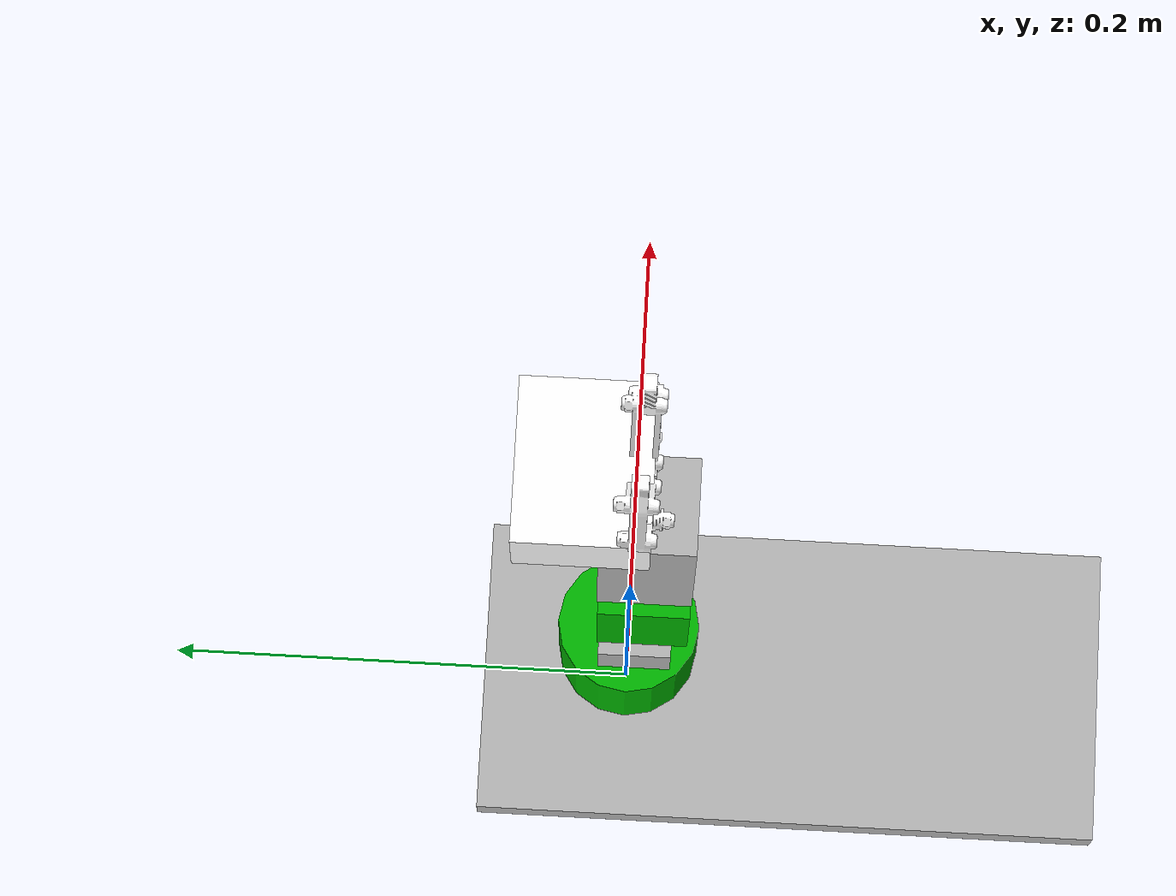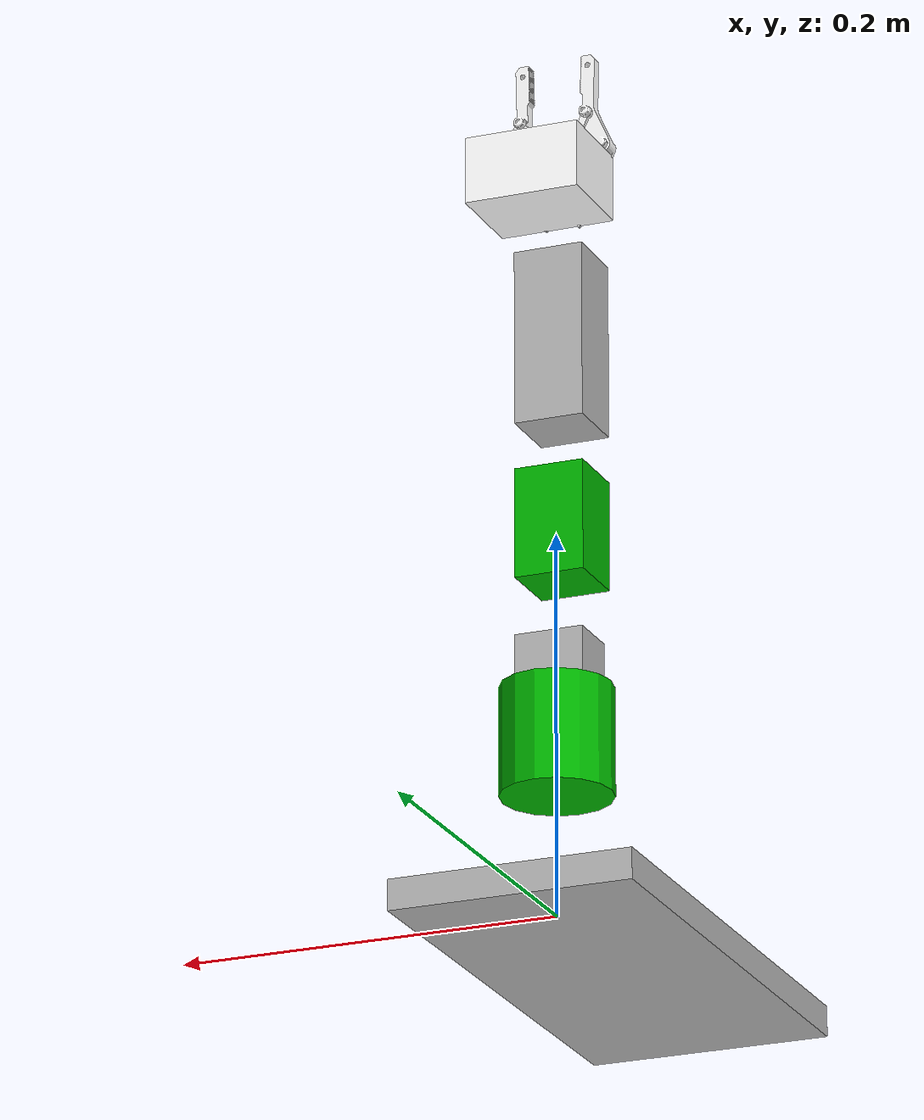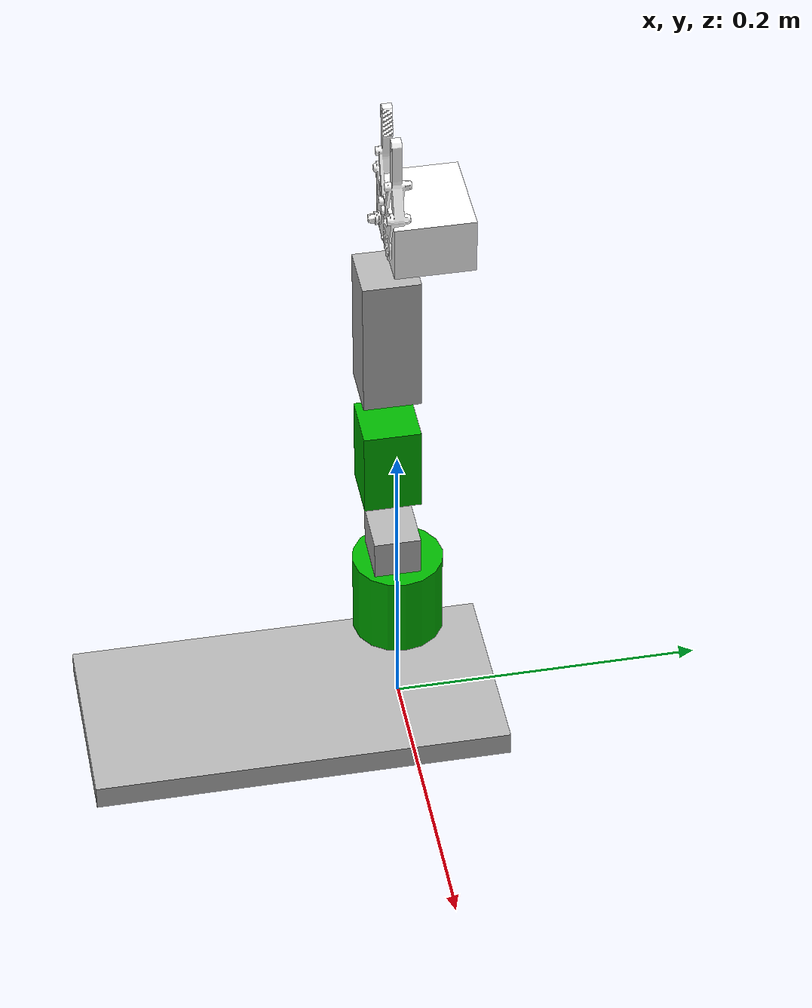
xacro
<?xml version="1.0" encoding="utf-8"?>
<robot name="dofbot" xmlns:xacro="http://www.ros.org/wiki/xacro">

  <xacro:macro name="dofbot_inertial" params="mass origin_xyz origin_rpy ixx iyy izz ixy ixz iyz">
    <inertial>
      <mass value="${mass}" />
      <origin xyz="${origin_xyz}" rpy="${origin_rpy}" />
      <inertia ixx="${ixx}" ixy="${ixy}" ixz="${ixz}"
               iyy="${iyy}" iyz="${iyz}" izz="${izz}" />
    </inertial>
  </xacro:macro>

  <xacro:macro name="dofbot_visual" params="mesh_file origin_xyz origin_rpy material_name">
    <visual>
      <origin xyz="${origin_xyz}" rpy="${origin_rpy}" />
      <geometry>
        <mesh filename="package://dofbot_description/meshes/visual/${mesh_file}" />
      </geometry>
      <material name="${material_name}" />
    </visual>
  </xacro:macro>

  <material name="grey_material">
    <color rgba="0.7 0.7 0.7 1" />
  </material>
  <material name="green_material">
    <color rgba="0 0.7 0 1" />
  </material>
  <material name="white_material">
    <color rgba="1 1 1 1" />
  </material>

  <link name="base_link">
    <xacro:dofbot_inertial mass="0.369776"
      origin_xyz="0.000065 -0.048265 0.021267" origin_rpy="0 0 0"
      ixx="0.00206195" ixy="-0.00000069" ixz="-0.00000073"
      iyy="0.00062736" iyz="-0.00032039" izz="0.00210250" />
    <xacro:dofbot_visual mesh_file="base_link.stl" origin_xyz="0 0 0" origin_rpy="0 0 0" material_name="grey_material" />
    <collision>
      <origin xyz="0 0 0" rpy="0 0 0" />
      <geometry>
        <mesh filename="package://dofbot_description/meshes/collision/base_link_col_1.stl" />
      </geometry>
    </collision>
    <collision>
      <origin xyz="0 0 0" rpy="0 0 0" />
      <geometry>
        <mesh filename="package://dofbot_description/meshes/collision/base_link_col_2.stl" />
      </geometry>
    </collision>
    <collision>
      <origin xyz="0 0 0" rpy="0 0 0" />
      <geometry>
        <mesh filename="package://dofbot_description/meshes/collision/base_link_col_3.stl" />
      </geometry>
    </collision>
  </link>

  <joint name="base_rotation_joint" type="revolute">
    <origin xyz="0 0 0.064" rpy="0 0 0" />
    <parent link="base_link" />
    <child link="base_rotation_link" />
    <axis xyz="0 0 1" />
    <limit lower="-1.5708" upper="1.5708" effort="1.5" velocity="3.14" />
    <dynamics damping="0.1" friction="0.05" />
  </joint>

  <link name="base_rotation_link">
    <xacro:dofbot_inertial mass="0.052312"
      origin_xyz="0.000003 0.000000 0.018653" origin_rpy="0 0 0"
      ixx="0.00001691" ixy="0.00000000" ixz="-0.00000010"
      iyy="0.00002055" iyz="0.00000000" izz="0.00001885" />
    <xacro:dofbot_visual mesh_file="link1.stl" origin_xyz="0 0 0" origin_rpy="0 0 0" material_name="green_material" />
    <collision>
      <origin xyz="0 0 0" rpy="0 0 0" />
      <geometry>
        <mesh filename="package://dofbot_description/meshes/collision/link1_col.stl" />
      </geometry>
    </collision>
  </link>

  <joint name="upper_arm_joint" type="revolute">
    <origin xyz="0 0 0.0435" rpy="0 1.5708 0" />
    <parent link="base_rotation_link" />
    <child link="upper_arm_link" />
    <axis xyz="0 0 1" />
    <limit lower="-1.5708" upper="1.5708" effort="1.5" velocity="3.14" />
    <dynamics damping="0.1" friction="0.05" />
  </joint>

  <link name="upper_arm_link">
    <xacro:dofbot_inertial mass="0.085210"
      origin_xyz="-0.024890 -0.002259 -0.000080" origin_rpy="0 0 0"
      ixx="0.00001575" ixy="0.00000237" ixz="0.00000041"
      iyy="0.00007182" iyz="-0.00000002" izz="0.00006650" />
    <xacro:dofbot_visual mesh_file="link2.stl" origin_xyz="0 0 0" origin_rpy="0 0 0" material_name="grey_material" />
    <collision>
      <origin xyz="0 0 0" rpy="0 0 0" />
      <geometry>
        <mesh filename="package://dofbot_description/meshes/collision/link2_col_1.stl" />
      </geometry>
    </collision>
    <collision>
      <origin xyz="0 0 0" rpy="0 0 0" />
      <geometry>
        <mesh filename="package://dofbot_description/meshes/collision/link2_col_2.stl" />
      </geometry>
    </collision>
  </link>

  <joint name="forearm_joint" type="revolute">
    <origin xyz="-0.08285 0 0" rpy="0 0 0" />
    <parent link="upper_arm_link" />
    <child link="forearm_link" />
    <axis xyz="0 0 1" />
    <limit lower="-1.5708" upper="1.5708" effort="1.5" velocity="3.14" />
    <dynamics damping="0.1" friction="0.05" />
  </joint>

  <link name="forearm_link">
    <xacro:dofbot_inertial mass="0.085210"
      origin_xyz="-0.024890 -0.002259 -0.000650" origin_rpy="0 0 0"
      ixx="0.00001575" ixy="0.00000237" ixz="0.00000039"
      iyy="0.00007182" iyz="-0.00000003" izz="0.00006650" />
    <xacro:dofbot_visual mesh_file="link3.stl" origin_xyz="0 0 0" origin_rpy="0 0 0" material_name="green_material" />
    <collision>
      <origin xyz="0 0 0" rpy="0 0 0" />
      <geometry>
        <mesh filename="package://dofbot_description/meshes/collision/link3_col_1.stl" />
      </geometry>
    </collision>
    <collision>
      <origin xyz="0 0 0" rpy="0 0 0" />
      <geometry>
        <mesh filename="package://dofbot_description/meshes/collision/link3_col_2.stl" />
      </geometry>
    </collision>
  </link>

  <joint name="wrist_pitch_joint" type="revolute">
    <origin xyz="-0.08285 0 0" rpy="0 0 0" />
    <parent link="forearm_link" />
    <child link="wrist_link" />
    <axis xyz="0 0 1" />
    <limit lower="-1.5708" upper="1.5708" effort="1.5" velocity="3.14" />
    <dynamics damping="0.1" friction="0.05" />
  </joint>

  <link name="wrist_link">
    <xacro:dofbot_inertial mass="0.160515"
      origin_xyz="-0.038494 -0.004349 -0.000785" origin_rpy="0 0 0"
      ixx="0.00007571" ixy="0.00000562" ixz="-0.00000005"
      iyy="0.00010711" iyz="0.00000063" izz="0.00016261" />
    <xacro:dofbot_visual mesh_file="link4.stl" origin_xyz="0 0 0" origin_rpy="0 0 0" material_name="grey_material" />
    <collision>
      <origin xyz="0 0 0" rpy="0 0 0" />
      <geometry>
        <mesh filename="package://dofbot_description/meshes/collision/link4_col_1.stl" />
      </geometry>
    </collision>
    <collision>
      <origin xyz="0 0 0" rpy="0 0 0" />
      <geometry>
        <mesh filename="package://dofbot_description/meshes/collision/link4_col_2.stl" />
      </geometry>
    </collision>
    <collision>
      <origin xyz="0 0 0" rpy="0 0 0" />
      <geometry>
        <mesh filename="package://dofbot_description/meshes/collision/link4_col_3.stl" />
      </geometry>
    </collision>
  </link>

  <joint name="wrist_roll_joint" type="revolute">
    <origin xyz="-0.18385 -0.00215 -0.000605" rpy="0 -1.5708 0" />
    <parent link="wrist_link" />
    <child link="wrist_roll_link" />
    <axis xyz="0 0 1" />
    <limit lower="-1.5708" upper="3.1416" effort="1.5" velocity="3.14" />
    <dynamics damping="0.1" friction="0.05" />
  </joint>

  <link name="wrist_roll_link">
    <xacro:dofbot_inertial mass="0.091378"
      origin_xyz="0.002622 0.017797 0.030802" origin_rpy="0 0 0"
      ixx="0.00002550" ixy="-0.00000057" ixz="-0.00000065"
      iyy="0.00002286" iyz="-0.00000404" izz="0.00002965" />
    <xacro:dofbot_visual mesh_file="link5_flange.stl" origin_xyz="0 0 -0.11" origin_rpy="0 0 0" material_name="white_material" />
    <collision>
      <origin xyz="0 0 -0.11" rpy="0 0 0" />
      <geometry>
        <mesh filename="package://dofbot_description/meshes/collision/flange_col_1.stl" />
      </geometry>
    </collision>
    <collision>
      <origin xyz="0 0 -0.11" rpy="0 0 0" />
      <geometry>
        <mesh filename="package://dofbot_description/meshes/collision/flange_col_2.stl" />
      </geometry>
    </collision>
  </link>

  <joint name="gripper_left_joint" type="prismatic">
    <origin xyz="0 0 0" rpy="0 0 0" />
    <parent link="wrist_roll_link" />
    <child link="gripper_left_link" />
    <axis xyz="1 0 0" />
    <limit lower="-0.03" upper="0.03" effort="5.0" velocity="0.5" />
    <dynamics damping="0.1" friction="0.05" />
  </joint>

  <link name="gripper_left_link">
    <xacro:dofbot_inertial mass="0.006329"
      origin_xyz="0.016595 -0.001857 0.062980" origin_rpy="0 0 0"
      ixx="0.00000356" ixy="-0.00000001" ixz="-0.00000037"
      iyy="0.00000378" iyz="-0.00000016" izz="0.00000034" />
    <xacro:dofbot_visual mesh_file="left_finger.stl" origin_xyz="0 0 -0.11" origin_rpy="0 0 0" material_name="white_material" />
    <collision>
      <origin xyz="0 0 -0.11" rpy="0 0 0" />
      <geometry>
        <mesh filename="package://dofbot_description/meshes/collision/left_finger_col_1.stl" />
      </geometry>
    </collision>
    <collision>
      <origin xyz="0 0 -0.11" rpy="0 0 0" />
      <geometry>
        <mesh filename="package://dofbot_description/meshes/collision/left_finger_col_2.stl" />
      </geometry>
    </collision>
    <collision>
      <origin xyz="0 0 -0.11" rpy="0 0 0" />
      <geometry>
        <mesh filename="package://dofbot_description/meshes/collision/left_finger_col_3.stl" />
      </geometry>
    </collision>
  </link>

  <joint name="gripper_right_joint" type="prismatic">
    <origin xyz="0 0 0" rpy="0 0 0" />
    <parent link="wrist_roll_link" />
    <child link="gripper_right_link" />
    <axis xyz="1 0 0" />
    <limit lower="-0.03" upper="0.03" effort="5.0" velocity="0.5" />
    <dynamics damping="0.1" friction="0.05" />
    <mimic joint="gripper_left_joint" multiplier="-1.0" offset="0.0" />
  </joint>

  <link name="gripper_right_link">
    <xacro:dofbot_inertial mass="0.005998"
      origin_xyz="-0.016626 -0.001230 0.064650" origin_rpy="0 0 0"
      ixx="0.00000330" ixy="0.00000002" ixz="0.00000032"
      iyy="0.00000348" iyz="-0.00000022" izz="0.00000032" />
    <xacro:dofbot_visual mesh_file="right_finger.stl" origin_xyz="0 0 -0.11" origin_rpy="0 0 0" material_name="white_material" />
    <collision>
      <origin xyz="0 0 -0.11" rpy="0 0 0" />
      <geometry>
        <mesh filename="package://dofbot_description/meshes/collision/right_finger_col_1.stl" />
      </geometry>
    </collision>
    <collision>
      <origin xyz="0 0 -0.11" rpy="0 0 0" />
      <geometry>
        <mesh filename="package://dofbot_description/meshes/collision/right_finger_col_2.stl" />
      </geometry>
    </collision>
    <collision>
      <origin xyz="0 0 -0.11" rpy="0 0 0" />
      <geometry>
        <mesh filename="package://dofbot_description/meshes/collision/right_finger_col_3.stl" />
      </geometry>
    </collision>
  </link>

  <!-- gripper_tcp: 末端工具中心点 (TCP)，固定偏移，供 MoveIt IK 计算 -->
  <joint name="gripper_tcp_joint" type="fixed">
    <origin xyz="0 0 0.0925" rpy="0 0 0"/>
    <parent link="wrist_roll_link"/>
    <child link="gripper_tcp"/>
  </joint>

  <link name="gripper_tcp">
    <inertial>
      <mass value="1e-9"/>
      <origin xyz="0 0 0"/>
      <inertia ixx="1e-15" ixy="0" ixz="0" iyy="1e-15" iyz="0" izz="1e-15"/>
    </inertial>
  </link>

  <!-- eye-in-hand camera, 安装位置与 MJCF 一致 (wrist_roll_link 下方) -->
  <!-- 几何体已嵌入 wrist_roll_link 的 STL，此 link 仅用于 TF + 图像话题关联 -->
  <joint name="camera_joint" type="fixed">
    <origin xyz="0 0.05 -0.05" rpy="0 0 0"/>
    <parent link="wrist_roll_link"/>
    <child link="camera_link"/>
  </joint>

  <link name="camera_link">
    <inertial>
      <mass value="0.03"/>
      <origin xyz="0 0 0"/>
      <inertia ixx="1e-6" ixy="0" ixz="0" iyy="1e-6" iyz="0" izz="1e-6"/>
    </inertial>
  </link>

  <!-- ==================== Transmissions ==================== -->

  <transmission name="trans_base_rotation">
    <type>transmission_interface/SimpleTransmission</type>
    <joint name="base_rotation_joint">
      <hardwareInterface>hardware_interface/PositionJointInterface</hardwareInterface>
    </joint>
    <actuator name="motor_base_rotation">
      <hardwareInterface>hardware_interface/PositionJointInterface</hardwareInterface>
      <mechanicalReduction>1</mechanicalReduction>
    </actuator>
  </transmission>

  <transmission name="trans_upper_arm">
    <type>transmission_interface/SimpleTransmission</type>
    <joint name="upper_arm_joint">
      <hardwareInterface>hardware_interface/PositionJointInterface</hardwareInterface>
    </joint>
    <actuator name="motor_upper_arm">
      <hardwareInterface>hardware_interface/PositionJointInterface</hardwareInterface>
      <mechanicalReduction>1</mechanicalReduction>
    </actuator>
  </transmission>

  <transmission name="trans_forearm">
    <type>transmission_interface/SimpleTransmission</type>
    <joint name="forearm_joint">
      <hardwareInterface>hardware_interface/PositionJointInterface</hardwareInterface>
    </joint>
    <actuator name="motor_forearm">
      <hardwareInterface>hardware_interface/PositionJointInterface</hardwareInterface>
      <mechanicalReduction>1</mechanicalReduction>
    </actuator>
  </transmission>

  <transmission name="trans_wrist_pitch">
    <type>transmission_interface/SimpleTransmission</type>
    <joint name="wrist_pitch_joint">
      <hardwareInterface>hardware_interface/PositionJointInterface</hardwareInterface>
    </joint>
    <actuator name="motor_wrist_pitch">
      <hardwareInterface>hardware_interface/PositionJointInterface</hardwareInterface>
      <mechanicalReduction>1</mechanicalReduction>
    </actuator>
  </transmission>

  <transmission name="trans_wrist_roll">
    <type>transmission_interface/SimpleTransmission</type>
    <joint name="wrist_roll_joint">
      <hardwareInterface>hardware_interface/PositionJointInterface</hardwareInterface>
    </joint>
    <actuator name="motor_wrist_roll">
      <hardwareInterface>hardware_interface/PositionJointInterface</hardwareInterface>
      <mechanicalReduction>1</mechanicalReduction>
    </actuator>
  </transmission>

  <transmission name="trans_gripper_left">
    <type>transmission_interface/SimpleTransmission</type>
    <joint name="gripper_left_joint">
      <hardwareInterface>hardware_interface/PositionJointInterface</hardwareInterface>
    </joint>
    <actuator name="motor_gripper_left">
      <hardwareInterface>hardware_interface/PositionJointInterface</hardwareInterface>
      <mechanicalReduction>1</mechanicalReduction>
    </actuator>
  </transmission>

  <!-- ==================== Gazebo ==================== -->

  <gazebo reference="base_link">
    <material>Gazebo/Grey</material>
  </gazebo>
  <gazebo reference="base_rotation_link">
    <material>Gazebo/Green</material>
  </gazebo>
  <gazebo reference="upper_arm_link">
    <material>Gazebo/Grey</material>
  </gazebo>
  <gazebo reference="forearm_link">
    <material>Gazebo/Green</material>
  </gazebo>
  <gazebo reference="wrist_link">
    <material>Gazebo/Grey</material>
  </gazebo>
  <gazebo reference="wrist_roll_link">
    <material>Gazebo/White</material>
  </gazebo>
  <gazebo reference="gripper_left_link">
    <material>Gazebo/White</material>
  </gazebo>
  <gazebo reference="gripper_right_link">
    <material>Gazebo/White</material>
  </gazebo>

  <gazebo>
    <plugin name="gazebo_ros_control" filename="libgazebo_ros_control.so">
      <robotNamespace>/</robotNamespace>
      <robotSimType>gazebo_ros_control/DefaultRobotHWSim</robotSimType>
    </plugin>
  </gazebo>

</robot>
